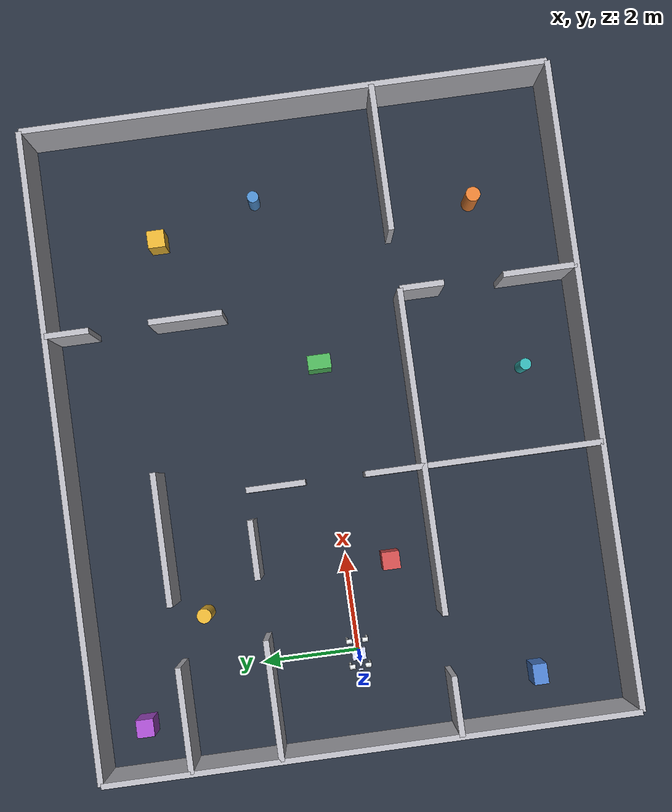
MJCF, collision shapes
<mujoco model="a2 corridor 06">
    <include file="a2.xml" />

    <statistic center="4.8 0 0.1" extent="2.0" />

    <visual>
        <headlight diffuse="0.6 0.6 0.6" ambient="0.3 0.3 0.3" specular="0 0 0" />
        <rgba haze="0.15 0.25 0.35 1" />
        <global azimuth="-130" elevation="-20" />
    </visual>

    <asset>
        <texture type="skybox" builtin="gradient" rgb1="0.3 0.5 0.7" rgb2="0 0 0" width="512"
            height="3072" />
        <texture type="2d" name="groundplane" builtin="checker" mark="edge" rgb1="0.18 0.22 0.28"
            rgb2="0.12 0.15 0.20" markrgb="0.6 0.6 0.6" width="300" height="300" />
        <material name="groundplane" texture="groundplane" texuniform="true" texrepeat="5 5"
            reflectance="0.15" />
        <material name="wall" rgba="0.72 0.72 0.75 1" />
    </asset>

    <worldbody>
        <light pos="4.8 0 10" dir="0 0 -1" directional="true" />
        <geom name="floor" size="0 0 0.05" type="plane" material="groundplane" />

        <!-- ===== Outer boundary ===== -->
        <geom material="wall" pos="-1.8 0 0.75" type="box" size="0.06 5.4 0.75" />
        <!-- west  -->
        <geom material="wall" pos="11.4 0 0.75" type="box" size="0.06 5.4 0.75" />
        <!-- east  -->
        <geom material="wall" pos="4.8 -5.4 0.75" type="box" size="6.6 0.06 0.75" />
        <!-- south -->
        <geom material="wall" pos="4.8 5.4 0.75" type="box" size="6.6 0.06 0.75" />
        <!-- north -->

        <!-- ===== H1 — y=3, gap x=1..3 (start ↔ north) ===== -->
        <geom material="wall" pos="-0.6 1.8 0.75" type="box" size="1.2 0.06 0.75" />
        <geom material="wall" pos="2.4 1.8 0.75" type="box" size="0.6 0.06 0.75" />

        <!-- ===== H2 — y=-3, gaps x=-1..1 and x=12..14 (start+north ↔ south) ===== -->
        <geom material="wall" pos="-1.2 -1.8 0.75" type="box" size="0.6 0.06 0.75" />
        <geom material="wall" pos="3.9 -1.8 0.75" type="box" size="3.3 0.06 0.75" />
        <geom material="wall" pos="9.9 -1.8 0.75" type="box" size="1.5 0.06 0.75" />

        <!-- ===== V1 — x=6, gap y=-1..1 (start ↔ east-mid) ===== -->
        <geom material="wall" pos="3.6 -3 0.75" type="box" size="0.06 2.4 0.75" />
        <geom material="wall" pos="3.6 1.2 0.75" type="box" size="0.06 0.6 0.75" />

        <!-- ===== H3 — y=6, gap x=0.5..2.5 (NW-lo ↔ NW-hi) ===== -->
        <geom material="wall" pos="-0.75 3.6 0.75" type="box" size="1.05 0.06 0.75" />
        <geom material="wall" pos="2.85 3.6 0.75" type="box" size="1.35 0.06 0.75" />

        <!-- ===== V2 — x=12, gap y=5.5..7.5 (NW-lo-east ↔ NE) ===== -->
        <geom material="wall" pos="7.2 2.55 0.75" type="box" size="0.06 0.75 0.75" />
        <geom material="wall" pos="7.2 4.95 0.75" type="box" size="0.06 0.45 0.75" />

        <!-- ===== V3 — x=12, gap y=-6.5..-4.5 (SE-west ↔ SE-east) ===== -->
        <geom material="wall" pos="7.2 -4.65 0.75" type="box" size="0.06 0.75 0.75" />
        <geom material="wall" pos="7.2 -2.25 0.75" type="box" size="0.06 0.45 0.75" />

        <!-- ===== Scattered obstacles ===== -->
        <!-- start room -->
        <geom pos="1.8 -0.9 0.5" type="box" size="0.18 0.18 0.5" rgba="0.80 0.30 0.30 1" />
        <!-- NW-lo -->
        <geom pos="1.2 3 0.5" type="cylinder" size="0.15 0.5" rgba="0.90 0.70 0.20 1" />
        <!-- NW-hi -->
        <geom pos="-0.9 4.5 0.4" type="box" size="0.18 0.18 0.4" rgba="0.65 0.30 0.80 1" />
        <!-- east-mid -->
        <geom pos="6 0 0.5" type="box" size="0.15 0.24 0.5" rgba="0.30 0.70 0.35 1" />
        <geom pos="9.6 0.9 0.4" type="cylinder" size="0.12 0.4" rgba="0.30 0.55 0.80 1" />
        <!-- NE -->
        <geom pos="9 3 0.4" type="box" size="0.18 0.18 0.4" rgba="0.90 0.70 0.20 1" />
        <!-- SW -->
        <geom pos="-0.9 -3.6 0.4" type="box" size="0.21 0.15 0.4" rgba="0.30 0.50 0.80 1" />
        <!-- SE-west -->
        <geom pos="5.4 -4.2 0.4" type="cylinder" size="0.12 0.4" rgba="0.20 0.70 0.70 1" />
        <!-- SE-east -->
        <geom pos="9 -3.6 0.5" type="cylinder" size="0.15 0.5" rgba="0.90 0.50 0.20 1" />
    </worldbody>
</mujoco>

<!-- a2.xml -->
<mujoco model="a2">
  <compiler angle="radian" meshdir="meshes/"/>
  <option gravity="0 0 -9.81" integrator="implicitfast"/>

  <visual>
    <map znear="0.002"/>
  </visual>

  <default>
      <default class="hip_joint">
        <joint damping="0.2" armature="0.03" frictionloss="1.0" />
      </default>
      <default class="thigh_joint">
        <joint damping="0.2" armature="0.03" frictionloss="1.0" />
      </default>
      <default class="calf_joint">
        <joint damping="1.0" armature="0.03" frictionloss="3.0" />
      </default>
      <default class="collision">
        <geom group="3" priority="1" condim="3"/>
      </default>
      <default class="foot">
          <geom group="3" priority="1" condim="6" friction="0.6 0.01 0.01"/>
      </default>
  </default>

  <asset>
    <mesh name="base_link" file="../meshes/base_link.STL"/>
    <mesh name="left_front_Link1" file="../meshes/left_front_Link1.STL"/>
    <mesh name="left_front_Link2" file="../meshes/left_front_Link2.STL"/>
    <mesh name="left_front_Link3" file="../meshes/left_front_Link3.STL"/>
    <mesh name="left_front_Link4" file="../meshes/left_front_Link4.STL"/>
    <mesh name="left_hind_Link1" file="../meshes/left_hind_Link1.STL"/>
    <mesh name="left_hind_Link2" file="../meshes/left_hind_Link2.STL"/>
    <mesh name="left_hind_Link3" file="../meshes/left_hind_Link3.STL"/>
    <mesh name="left_hind_Link4" file="../meshes/left_hind_Link4.STL"/>
    <mesh name="right_front_Link1" file="../meshes/right_front_Link1.STL"/>
    <mesh name="right_front_Link2" file="../meshes/right_front_Link2.STL"/>
    <mesh name="right_front_Link3" file="../meshes/right_front_Link3.STL"/>
    <mesh name="right_front_Link4" file="../meshes/right_front_Link4.STL"/>
    <mesh name="right_hind_Link1" file="../meshes/right_hind_Link1.STL"/>
    <mesh name="right_hind_Link2" file="../meshes/right_hind_Link2.STL"/>
    <mesh name="right_hind_Link3" file="../meshes/right_hind_Link3.STL"/>
    <mesh name="right_hind_Link4" file="../meshes/right_hind_Link4.STL"/>
  </asset>

  <worldbody>
    <body name="base_link" pos="0 0 0.7">
      <inertial pos="0.00698259 -0.000712858 0.0128895" quat="-0.00152907 0.699583 -0.00252986 0.714546" mass="19.651" diaginertia="0.472398 0.407723 0.141627"/>
      <joint name="floating_base_joint" type="free" limited="false" actuatorfrclimited="false"/>
      <site name="imu" pos="-0.0 0 0.0" />
      <site name="front_lidar_site" pos="0.33767 0.0 0.08134" quat="0.5 0.5 0.5 0.5"/>
      <site name="rear_lidar_site" pos="-0.27997 0.0 0.087337" quat="0.5 0.5 -0.5 -0.5"/>
      <camera name="front_camera" pos="0.3421785 0.0336742 0.0513862" xyaxes="0 -1 0 0 0 1" fovy="77" />
      <geom type="mesh" contype="0" conaffinity="0" group="1" density="0" rgba="0.792157 0.819608 0.933333 1" mesh="base_link"/>
      <geom class="collision" size="0.12 0.14 0.085" pos="0 0 0.007" type="box" rgba="0.792157 0.819608 0.933333 1"/>
      <geom class="collision" size="0.04 0.025 0.01" pos="0.25 0 0.119" type="box" rgba="0.792157 0.819608 0.933333 1"/>
      <geom class="collision" size="0.025 0.015 0.008" pos="-0.22 0 0.119" quat="0.999888 0 -0.0149994 0" type="box" rgba="0.792157 0.819608 0.933333 1"/>
      <geom class="collision" size="0.03 0.05 0.005" pos="0.365 0 0.1" quat="0.939373 0 -0.342898 0" type="box" rgba="0.792157 0.819608 0.933333 1"/>
      <geom class="collision" size="0.0225 0.05 0.005" pos="-0.31 0 0.112" quat="0.939373 0 0.342898 0" type="box" rgba="0.792157 0.819608 0.933333 1"/>
      <body name="FL_hip" pos="0.25944 0.075113 0">
        <inertial pos="-0.002408 -0.01622 0.000239" quat="0.66751 0.421649 0.565191 0.239168" mass="1.62" diaginertia="0.0016644 0.00161602 0.00145995"/>
        <joint name="FL_hip_joint" pos="0 0 0" axis="1 0 0" range="-1.01 1.01" actuatorfrcrange="-120 120" class="hip_joint"/>
        <geom type="mesh" contype="0" conaffinity="0" group="1" density="0" rgba="0.898039 0.917647 0.929412 1" mesh="left_front_Link1"/>
        <body name="FL_thigh" pos="0 0.12779 0">
          <inertial pos="-0.003268 -0.03111 -0.053896" quat="0.993045 0.11348 0.0231928 0.0211279" mass="3.079" diaginertia="0.0293395 0.0280448 0.00383794"/>
          <joint name="FL_thigh_joint" pos="0 0 0" axis="0 1 0" range="-2.34 3.15" actuatorfrcrange="-120 120" class="thigh_joint"/>
          <geom type="mesh" contype="0" conaffinity="0" group="1" density="0" rgba="0.898039 0.917647 0.929412 1" mesh="left_front_Link2"/>
          <geom class="collision" size="0.048 0.06" pos="0 -0.04 0" quat="0.707035 0.707179 0 0" type="cylinder" rgba="0.898039 0.917647 0.929412 1"/>
          <geom class="collision" size="0.0275 0.018 0.085" pos="-0.025 0 -0.09" quat="0.999988 0 0.00499998 0" type="box" rgba="0.898039 0.917647 0.929412 1"/>
          <geom class="collision" size="0.0085 0.025 0.025" pos="-0.022 0 -0.27" quat="0.930508 0 -0.366273 0" type="box" rgba="0.898039 0.917647 0.929412 1"/>
          <body name="FL_calf" pos="0 0 -0.275">
            <inertial pos="0.0102138 -1.99312e-05 -0.136496" quat="0.706884 -0.0119077 -0.0120568 0.707127" mass="0.407" diaginertia="0.00511119 0.00502314 0.000177746"/>
            <joint name="FL_calf_joint" pos="0 0 0" axis="0 1 0" range="-2.77 -0.54" actuatorfrcrange="-180 180" class="calf_joint"/>
            <geom type="mesh" contype="0" conaffinity="0" group="1" density="0" rgba="0.898039 0.917647 0.929412 1" mesh="left_front_Link3"/>
            <geom class="collision" size="0.012 0.015 0.05" pos="0.018 0 -0.08" quat="0.992809 0 -0.119712 0" type="box" rgba="0.898039 0.917647 0.929412 1"/>
            <geom class="collision" size="0.011 0.015 0.04" pos="0.033 0 -0.17" quat="0.999888 0 -0.0149994 0" type="box" rgba="0.898039 0.917647 0.929412 1"/>
            <geom class="collision" size="0.01 0.018 0.03" pos="0.029 0 -0.236" quat="0.995004 0 0.0998334 0" type="box" rgba="0.898039 0.917647 0.929412 1"/>
            <geom class="collision" size="0.005 0.018 0.03" pos="0.008 0 -0.23" quat="0.942755 0 0.333487 0" type="box" rgba="0.898039 0.917647 0.929412 1"/>
            <geom pos="0 0 -0.275" quat="1 0 0 0" type="mesh" contype="0" conaffinity="0" group="1" density="0" rgba="0.698039 0.698039 0.698039 1" mesh="left_front_Link4"/>
            <geom size="0.032" pos="0 0 -0.275" rgba="0.698039 0.698039 0.698039 1" class="foot"/>
          </body>
        </body>
      </body>
      <body name="RL_hip" pos="-0.25944 0.075113 0">
        <inertial pos="0.00327 -0.01622 -9.7e-05" quat="0.358494 0.383537 0.580824 0.622113" mass="1.62" diaginertia="0.00167848 0.00163116 0.00141504"/>
        <joint name="RL_hip_joint" pos="0 0 0" axis="1 0 0" range="-1.01 1.01" actuatorfrcrange="-120 120" class="hip_joint"/>
        <geom type="mesh" contype="0" conaffinity="0" group="1" density="0" rgba="0.898039 0.917647 0.929412 1" mesh="left_hind_Link1"/>
        <body name="RL_thigh" pos="0 0.12779 0">
          <inertial pos="-0.003268 -0.03111 -0.053896" quat="0.993045 0.11348 0.0231928 0.0211279" mass="3.079" diaginertia="0.0293395 0.0280448 0.00383794"/>
          <joint name="RL_thigh_joint" pos="0 0 0" axis="0 1 0" range="-1.56 3.94" actuatorfrcrange="-120 120" class="thigh_joint"/>
          <geom type="mesh" contype="0" conaffinity="0" group="1" density="0" rgba="0.898039 0.917647 0.929412 1" mesh="left_hind_Link2"/>
          <geom class="collision" size="0.048 0.06" pos="0 -0.04 0" quat="0.707035 0.707179 0 0" type="cylinder" rgba="0.898039 0.917647 0.929412 1"/>
          <geom class="collision" size="0.0275 0.018 0.085" pos="-0.025 0 -0.09" quat="0.999988 0 0.00499998 0" type="box" rgba="0.898039 0.917647 0.929412 1"/>
          <geom class="collision" size="0.0085 0.025 0.025" pos="-0.022 0 -0.27" quat="0.930508 0 -0.366273 0" type="box" rgba="0.898039 0.917647 0.929412 1"/>
          <body name="RL_calf" pos="0 0 -0.275">
            <inertial pos="0.0102138 -1.99312e-05 -0.136496" quat="0.706884 -0.0119077 -0.0120568 0.707127" mass="0.407" diaginertia="0.00511119 0.00502314 0.000177746"/>
            <joint name="RL_calf_joint" pos="0 0 0" axis="0 1 0" range="-2.77 -0.54" actuatorfrcrange="-180 180" class="calf_joint"/>
            <geom type="mesh" contype="0" conaffinity="0" group="1" density="0" rgba="0.898039 0.917647 0.929412 1" mesh="left_hind_Link3"/>
            <geom class="collision" size="0.012 0.015 0.05" pos="0.018 0 -0.08" quat="0.992809 0 -0.119712 0" type="box" rgba="0.898039 0.917647 0.929412 1"/>
            <geom class="collision" size="0.011 0.015 0.04" pos="0.033 0 -0.17" quat="0.999888 0 -0.0149994 0" type="box" rgba="0.898039 0.917647 0.929412 1"/>
            <geom class="collision" size="0.01 0.018 0.03" pos="0.029 0 -0.236" quat="0.995004 0 0.0998334 0" type="box" rgba="0.898039 0.917647 0.929412 1"/>
            <geom class="collision" size="0.005 0.018 0.03" pos="0.008 0 -0.23" quat="0.942755 0 0.333487 0" type="box" rgba="0.898039 0.917647 0.929412 1"/>
            <geom pos="0 0 -0.275" quat="1 0 0 0" type="mesh" contype="0" conaffinity="0" group="1" density="0" rgba="0.698039 0.698039 0.698039 1" mesh="left_hind_Link4"/>
            <geom size="0.032" pos="0 0 -0.275" rgba="0.698039 0.698039 0.698039 1" class="foot"/>
          </body>
        </body>
      </body>
      <body name="FR_hip" pos="0.25944 -0.075113 0">
        <inertial pos="-0.002465 0.01622 0.000318" quat="0.244263 0.553086 0.449878 0.657299" mass="1.62" diaginertia="0.0016672 0.00160755 0.00146457"/>
        <joint name="FR_hip_joint" pos="0 0 0" axis="1 0 0" range="-1.01 1.01" actuatorfrcrange="-120 120" class="hip_joint"/>
        <geom type="mesh" contype="0" conaffinity="0" group="1" density="0" rgba="0.898039 0.917647 0.929412 1" mesh="right_front_Link1"/>
        <body name="FR_thigh" pos="0 -0.12779 0">
          <inertial pos="-0.003256 0.031125 -0.053921" quat="0.993054 -0.113587 0.0234158 -0.0198545" mass="3.077" diaginertia="0.029323 0.028038 0.00383842"/>
          <joint name="FR_thigh_joint" pos="0 0 0" axis="0 1 0" range="-2.34 3.15" actuatorfrcrange="-120 120" class="thigh_joint"/>
          <geom type="mesh" contype="0" conaffinity="0" group="1" density="0" rgba="0.898039 0.917647 0.929412 1" mesh="right_front_Link2"/>
          <geom class="collision" size="0.048 0.06" pos="0 0.04 0" quat="0.707035 0.707179 0 0" type="cylinder" rgba="0.898039 0.917647 0.929412 1"/>
          <geom class="collision" size="0.0275 0.018 0.085" pos="-0.025 0 -0.09" quat="0.999988 0 0.00499998 0" type="box" rgba="0.898039 0.917647 0.929412 1"/>
          <geom class="collision" size="0.0085 0.025 0.025" pos="-0.022 0 -0.27" quat="0.930508 0 -0.366273 0" type="box" rgba="0.898039 0.917647 0.929412 1"/>
          <body name="FR_calf" pos="0 0 -0.275">
            <inertial pos="0.0102138 1.55479e-05 -0.136496" quat="0.707151 -0.0120743 -0.0118903 0.706859" mass="0.407" diaginertia="0.00511119 0.00502314 0.000177746"/>
            <joint name="FR_calf_joint" pos="0 0 0" axis="0 1 0" range="-2.77 -0.54" actuatorfrcrange="-180 180" class="calf_joint"/>
            <geom type="mesh" contype="0" conaffinity="0" group="1" density="0" rgba="0.898039 0.917647 0.929412 1" mesh="right_front_Link3"/>
            <geom class="collision" size="0.012 0.015 0.05" pos="0.018 0 -0.08" quat="0.992809 0 -0.119712 0" type="box" rgba="0.898039 0.917647 0.929412 1"/>
            <geom class="collision" size="0.011 0.015 0.04" pos="0.033 0 -0.17" quat="0.999888 0 -0.0149994 0" type="box" rgba="0.898039 0.917647 0.929412 1"/>
            <geom class="collision" size="0.01 0.018 0.03" pos="0.029 0 -0.236" quat="0.995004 0 0.0998334 0" type="box" rgba="0.898039 0.917647 0.929412 1"/>
            <geom class="collision" size="0.005 0.018 0.03" pos="0.008 0 -0.23" quat="0.942755 0 0.333487 0" type="box" rgba="0.898039 0.917647 0.929412 1"/>
            <geom pos="0 0 -0.275" quat="1 0 0 0" type="mesh" contype="0" conaffinity="0" group="1" density="0" rgba="0.698039 0.698039 0.698039 1" mesh="right_front_Link4"/>
            <geom size="0.032" pos="0 0 -0.275" rgba="0.698039 0.698039 0.698039 1" class="foot"/>
          </body>
        </body>
      </body>
      <body name="RR_hip" pos="-0.25944 -0.075113 0">
        <inertial pos="0.00327 0.01622 -3.7e-05" quat="0.616206 0.585144 0.36648 0.378931" mass="1.62" diaginertia="0.00167769 0.00163476 0.00141225"/>
        <joint name="RR_hip_joint" pos="0 0 0" axis="1 0 0" range="-1.01 1.01" actuatorfrcrange="-120 120" class="hip_joint"/>
        <geom type="mesh" contype="0" conaffinity="0" group="1" density="0" rgba="0.898039 0.917647 0.929412 1" mesh="right_hind_Link1"/>
        <body name="RR_thigh" pos="0 -0.12779 0">
          <inertial pos="-0.003256 0.031125 -0.053921" quat="0.993054 -0.113587 0.0234158 -0.0198545" mass="3.077" diaginertia="0.029323 0.028038 0.00383842"/>
          <joint name="RR_thigh_joint" pos="0 0 0" axis="0 1 0" range="-1.56 3.94" actuatorfrcrange="-120 120" class="thigh_joint"/>
          <geom type="mesh" contype="0" conaffinity="0" group="1" density="0" rgba="0.898039 0.917647 0.929412 1" mesh="right_hind_Link2"/>
          <geom class="collision" size="0.048 0.06" pos="0 0.04 0" quat="0.707035 0.707179 0 0" type="cylinder" rgba="0.898039 0.917647 0.929412 1"/>
          <geom class="collision" size="0.0275 0.018 0.085" pos="-0.025 0 -0.09" quat="0.999988 0 0.00499998 0" type="box" rgba="0.898039 0.917647 0.929412 1"/>
          <geom class="collision" size="0.0085 0.025 0.025" pos="-0.022 0 -0.27" quat="0.930508 0 -0.366273 0" type="box" rgba="0.898039 0.917647 0.929412 1"/>
          <body name="RR_calf" pos="0 0 -0.275">
            <inertial pos="0.0102138 1.55479e-05 -0.136496" quat="0.707151 -0.0120743 -0.0118903 0.706859" mass="0.407" diaginertia="0.00511119 0.00502314 0.000177746"/>
            <joint name="RR_calf_joint" pos="0 0 0" axis="0 1 0" range="-2.77 -0.54" actuatorfrcrange="-180 180" class="calf_joint"/>
            <geom type="mesh" contype="0" conaffinity="0" group="1" density="0" rgba="0.898039 0.917647 0.929412 1" mesh="right_hind_Link3"/>
            <geom class="collision" size="0.012 0.015 0.05" pos="0.018 0 -0.08" quat="0.992809 0 -0.119712 0" type="box" rgba="0.898039 0.917647 0.929412 1"/>
            <geom class="collision" size="0.011 0.015 0.04" pos="0.033 0 -0.17" quat="0.999888 0 -0.0149994 0" type="box" rgba="0.898039 0.917647 0.929412 1"/>
            <geom class="collision" size="0.01 0.018 0.03" pos="0.029 0 -0.236" quat="0.995004 0 0.0998334 0" type="box" rgba="0.898039 0.917647 0.929412 1"/>
            <geom class="collision" size="0.005 0.018 0.03" pos="0.008 0 -0.23" quat="0.942755 0 0.333487 0" type="box" rgba="0.898039 0.917647 0.929412 1"/>
            <geom pos="0 0 -0.275" quat="1 0 0 0" type="mesh" contype="0" conaffinity="0" group="1" density="0" rgba="0.698039 0.698039 0.698039 1" mesh="right_hind_Link4"/>
            <geom size="0.032" pos="0 0 -0.275" rgba="0.698039 0.698039 0.698039 1" class="foot"/>
          </body>
        </body>
      </body>
    </body>
  </worldbody>

  <actuator>
    <motor ctrlrange="-120 120"  name="FR_hip" joint="FR_hip_joint"/>
    <motor ctrlrange="-120 120"  name="FR_thigh" joint="FR_thigh_joint"/>
    <motor ctrlrange="-180 180"  name="FR_calf" joint="FR_calf_joint"/>
    <motor ctrlrange="-120 120"  name="FL_hip" joint="FL_hip_joint"/>
    <motor ctrlrange="-120 120"  name="FL_thigh" joint="FL_thigh_joint"/>
    <motor ctrlrange="-180 180" name="FL_calf" joint="FL_calf_joint"/>
    <motor ctrlrange="-120 120"  name="RR_hip" joint="RR_hip_joint"/>
    <motor ctrlrange="-120 120"  name="RR_thigh" joint="RR_thigh_joint"/>
    <motor ctrlrange="-180 180" name="RR_calf" joint="RR_calf_joint"/>
    <motor ctrlrange="-120 120"  name="RL_hip" joint="RL_hip_joint"/>
    <motor ctrlrange="-120 120"  name="RL_thigh" joint="RL_thigh_joint"/>
    <motor ctrlrange="-180 180" name="RL_calf" joint="RL_calf_joint"/>
  </actuator>

  <sensor>
    <jointpos name="FR_hip_pos" joint="FR_hip_joint" />
    <jointpos name="FR_thigh_pos" joint="FR_thigh_joint" />
    <jointpos name="FR_calf_pos" joint="FR_calf_joint" />
    <jointpos name="FL_hip_pos" joint="FL_hip_joint" />
    <jointpos name="FL_thigh_pos" joint="FL_thigh_joint" />
    <jointpos name="FL_calf_pos" joint="FL_calf_joint" />
    <jointpos name="RR_hip_pos" joint="RR_hip_joint" />
    <jointpos name="RR_thigh_pos" joint="RR_thigh_joint" />
    <jointpos name="RR_calf_pos" joint="RR_calf_joint" />
    <jointpos name="RL_hip_pos" joint="RL_hip_joint" />
    <jointpos name="RL_thigh_pos" joint="RL_thigh_joint" />
    <jointpos name="RL_calf_pos" joint="RL_calf_joint" />

    <jointvel name="FR_hip_vel" joint="FR_hip_joint" />
    <jointvel name="FR_thigh_vel" joint="FR_thigh_joint" />
    <jointvel name="FR_calf_vel" joint="FR_calf_joint" />
    <jointvel name="FL_hip_vel" joint="FL_hip_joint" />
    <jointvel name="FL_thigh_vel" joint="FL_thigh_joint" />
    <jointvel name="FL_calf_vel" joint="FL_calf_joint" />
    <jointvel name="RR_hip_vel" joint="RR_hip_joint" />
    <jointvel name="RR_thigh_vel" joint="RR_thigh_joint" />
    <jointvel name="RR_calf_vel" joint="RR_calf_joint" />
    <jointvel name="RL_hip_vel" joint="RL_hip_joint" />
    <jointvel name="RL_thigh_vel" joint="RL_thigh_joint" />
    <jointvel name="RL_calf_vel" joint="RL_calf_joint" />

    <jointactuatorfrc name="FR_hip_torque" joint="FR_hip_joint" noise="0.01" />
    <jointactuatorfrc name="FR_thigh_torque" joint="FR_thigh_joint" noise="0.01" />
    <jointactuatorfrc name="FR_calf_torque" joint="FR_calf_joint" noise="0.01" />
    <jointactuatorfrc name="FL_hip_torque" joint="FL_hip_joint" noise="0.01" />
    <jointactuatorfrc name="FL_thigh_torque" joint="FL_thigh_joint" noise="0.01" />
    <jointactuatorfrc name="FL_calf_torque" joint="FL_calf_joint" noise="0.01" />
    <jointactuatorfrc name="RR_hip_torque" joint="RR_hip_joint" noise="0.01" />
    <jointactuatorfrc name="RR_thigh_torque" joint="RR_thigh_joint" noise="0.01" />
    <jointactuatorfrc name="RR_calf_torque" joint="RR_calf_joint" noise="0.01" />
    <jointactuatorfrc name="RL_hip_torque" joint="RL_hip_joint" noise="0.01" />
    <jointactuatorfrc name="RL_thigh_torque" joint="RL_thigh_joint" noise="0.01" />
    <jointactuatorfrc name="RL_calf_torque" joint="RL_calf_joint" noise="0.01" />

    <framequat name="imu_quat" objtype="site" objname="imu" noise="0.01" />
    <gyro name="imu_gyro" site="imu" noise="0.01" />
    <accelerometer name="imu_acc" site="imu" noise="0.01" />

    <framepos name="frame_pos" objtype="site" objname="imu" />
    <framelinvel name="frame_vel" objtype="site" objname="imu" />
  </sensor>

</mujoco>
